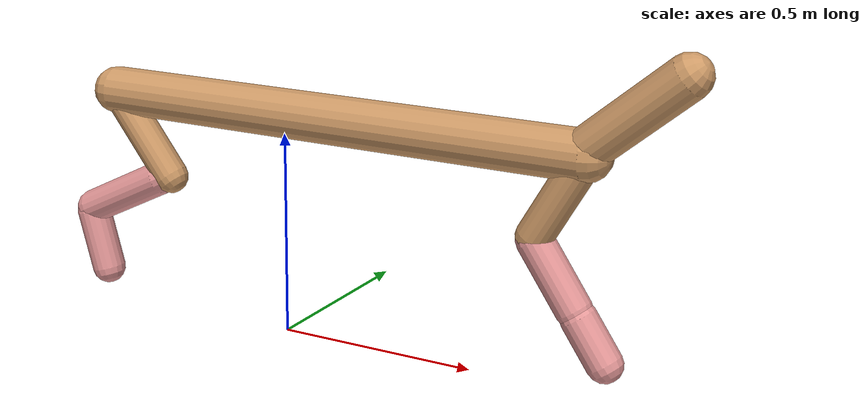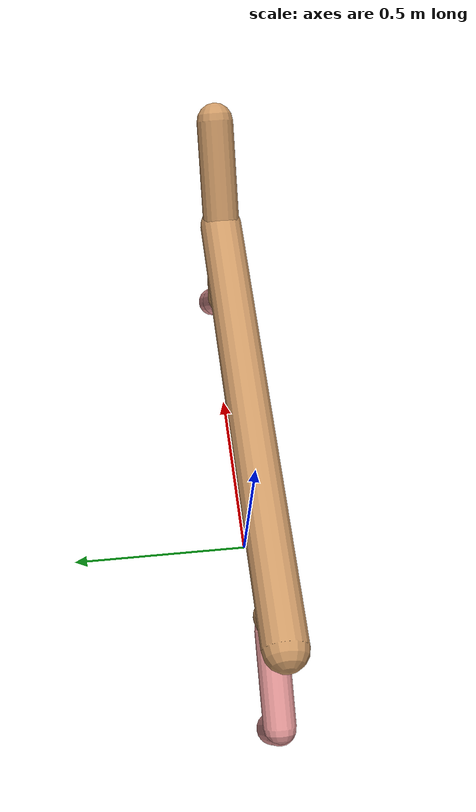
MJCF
<mujoco model="cheetah">
  <compiler angle="radian" coordinate="local" inertiafromgeom="true" settotalmass="14" />
  <default>
    <joint armature=".1" damping=".01" limited="true" solimplimit="0 .8 .03" solreflimit=".02 1" stiffness="8" />
    <geom conaffinity="0" condim="3" contype="1" friction="0.8 .1 .1" rgba="0.8 0.6 .4 1" solimp="0.0 0.8 0.01" solref="0.02 1" />
    <motor ctrllimited="true" ctrlrange="-1 1" />
  </default>
  <size nstack="300000" nuser_geom="1" />
  <option gravity="0 0 -9.81" timestep="0.01" />
  <worldbody>
    <body name="torso" pos="0.0 0.0 0.5510560728635072">
      <joint armature="0" axis="1 0 0" damping="0" limited="false" name="ignorex" pos="0 0 0" stiffness="0" type="slide" />
      <joint armature="0" axis="0 0 1" damping="0" limited="false" name="ignorez" pos="0 0 0" stiffness="0" type="slide" />
      <joint armature="0" axis="0 1 0" damping="0" limited="false" name="ignorey" pos="0 0 0" stiffness="0" type="hinge" />
      <geom fromto="-0.5 0.0 0.0 0.7673970313165881 0.0 0.0" name="torso" size="0.059092244949096595" type="capsule" />
      <geom axisangle="0 1 0 .87" name="head" pos="0.8673970313165881 0.0 0.1" size="0.051520138619923626 0.15" type="capsule" />

      <body name="bthigh" pos="-.5 0 0">
        <joint axis="0 1 0" damping="6" name="bthigh" pos="0 0 0" range="-.52 1.05" stiffness="240" type="hinge" />
        <geom axisangle="0 1 0 -3.8" name="bthigh" pos="0.08453159967529289 0.0 -0.10989107957788076" size="0.0429729927576547 0.11962993714732806" type="capsule" />
        <body name="bshin" pos="0.12906319935058577 0.0 -0.2097821591557615">
          <joint axis="0 1 0" damping="4.5" name="bshin" pos="0 0 0" range="-.785 .785" stiffness="180" type="hinge" />
          <geom axisangle="0 1 0 -2.03" name="bshin" pos="-0.11652585442813104 0.0 -0.05826292721406552" rgba="0.9 0.6 0.6 1" size="0.0429729927576547 0.12375510739378764" type="capsule" />
          <body name="bfoot" pos="-0.23305170885626209 0.0 -0.11652585442813104">
            <joint axis="0 1 0" damping="3" name="bfoot" pos="0 0 0" range="-.4 .785" stiffness="120" type="hinge" />
            <geom axisangle="0 1 0 -.27" name="bfoot" pos="0.02514046874820776 0.0 -0.08128751561920508" rgba="0.9 0.6 0.6 1" size="0.0429729927576547 0.07755320063344026" type="capsule" />
            <inertial mass="10" />
          </body>
        </body>
      </body>
      <body name="fthigh" pos="0.7673970313165881 0.0 0.0">
        <joint axis="0 1 0" damping="4.5" name="fthigh" pos="0 0 0" range="-1.5 0.8" stiffness="180" type="hinge" />
        <geom axisangle="0 1 0 .52" name="fthigh" pos="-0.059559148118748996 0.0 -0.10210139677499827" size="0.0432736265849356 0.11227872143393983" type="capsule" />
        <body name="fshin" pos="-0.11911829623749799 0.0 -0.20420279354999654">
          <joint axis="0 1 0" damping="3" name="fshin" pos="0 0 0" range="-1.2 1.1" stiffness="120" type="hinge" />
          <geom axisangle="0 1 0 -.6" name="fshin" pos="0.05533079726628109 0.0 -0.07661187313792765" rgba="0.9 0.6 0.6 1" size="0.0432736265849356 0.089485296781937" type="capsule" />
          <body name="ffoot" pos="0.11066159453256218 0.0 -0.1532237462758553">
            <joint axis="0 1 0" damping="1.5" name="ffoot" pos="0 0 0" range="-3.1 -0.3" stiffness="60" type="hinge" />
            <geom axisangle="0 1 0 -.6" name="ffoot" pos="0.039102532270358564 0.0 -0.06082616130944666" rgba="0.9 0.6 0.6 1" size="0.0432736265849356 0.059094063912599915" type="capsule" />
            <inertial mass="10" />
          </body>
        </body>
      </body>
    </body>
  </worldbody>
  <actuator>
    <motor gear="120" joint="bthigh" name="bthigh" />
    <motor gear="90" joint="bshin" name="bshin" />
    <motor gear="60" joint="bfoot" name="bfoot" />
    <motor gear="120" joint="fthigh" name="fthigh" />
    <motor gear="60" joint="fshin" name="fshin" />
    <motor gear="30" joint="ffoot" name="ffoot" />
  </actuator>
</mujoco>
